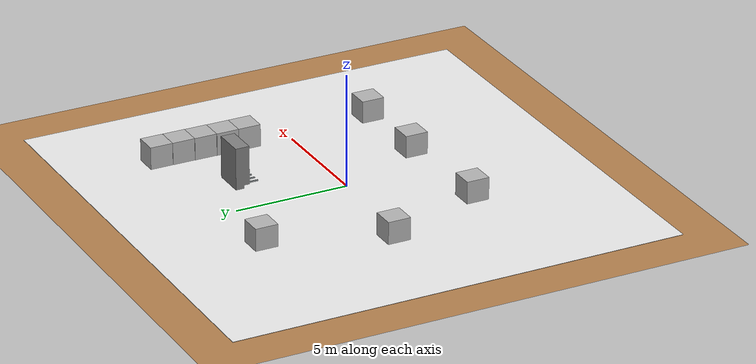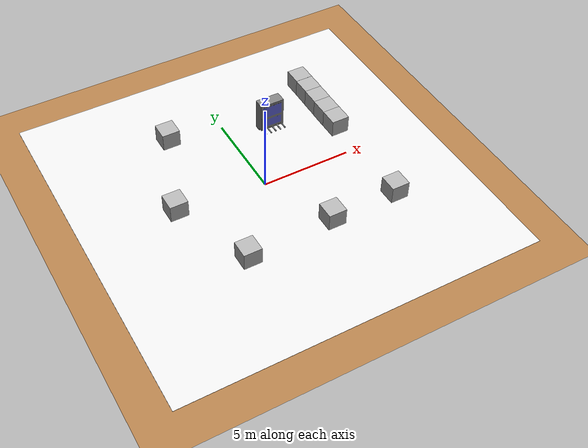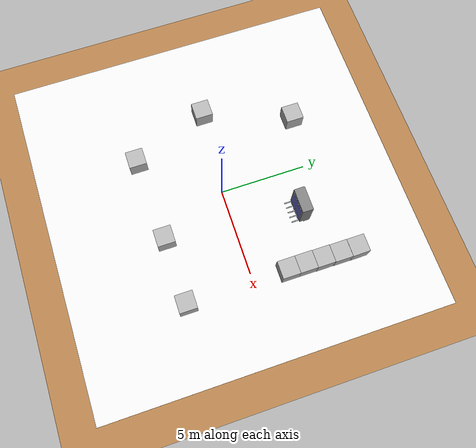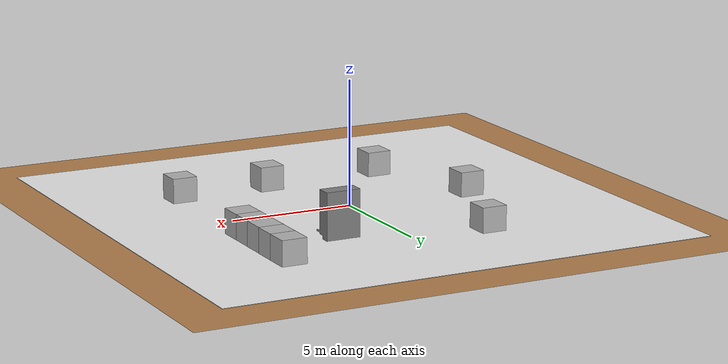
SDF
<sdf version="1.10">
 <world name="empty">
  <physics name="1ms" type="ignored">
   <max_step_size>0.001</max_step_size>
   <real_time_factor>1</real_time_factor>
   <real_time_update_rate>1000</real_time_update_rate>
  </physics>
  <plugin name="gz::sim::systems::Physics" filename="gz-sim-physics-system"/>
  <plugin name="gz::sim::systems::UserCommands" filename="gz-sim-user-commands-system"/>
  <plugin name="gz::sim::systems::SceneBroadcaster" filename="gz-sim-scene-broadcaster-system"/>
  <plugin name="gz::sim::systems::Contact" filename="gz-sim-contact-system"/>
  <gravity>0 0 -9.8000000000000007</gravity>
  <magnetic_field>5.5644999999999998e-06 2.2875799999999999e-05 -4.2388400000000002e-05</magnetic_field>
  <atmosphere type="adiabatic"/>
  <scene>
   <ambient>0.400000006 0.400000006 0.400000006 1</ambient>
   <background>0.699999988 0.699999988 0.699999988 1</background>
   <shadows>true</shadows>
  </scene>
  <model name="ground_plane">
   <static>true</static>
   <link name="link">
    <collision name="collision">
     <geometry><plane><normal>0 0 1</normal><size>100 100</size></plane></geometry>
    </collision>
    <visual name="visual">
     <geometry><plane><normal>0 0 1</normal><size>100 100</size></plane></geometry>
     <material>
      <script><uri>file://media/materials/scripts/gazebo.material</uri><name>Gazebo/Wood</name></script>
     </material>
    </visual>
    <inertial>
     <mass>1</mass>
     <inertia><ixx>1</ixx><ixy>0</ixy><ixz>0</ixz><iyy>1</iyy><iyz>0</iyz><izz>1</izz></inertia>
    </inertial>
   </link>
  </model>
  <model name="factory_layout">
   <static>true</static>
   <link name="layout_link">
    <pose>0 0 0.001 0 0 0</pose>
    <visual name="layout_visual">
     <geometry><plane><normal>0 0 1</normal><size>20 20</size></plane></geometry>
     <material>
      <ambient>1 1 1 1</ambient>
      <diffuse>1 1 1 1</diffuse>
      <specular>0 0 0 1</specular>
      <emissive>0 0 0 1</emissive>
      <script><uri>file://media/materials/scripts/gazebo.material</uri><name>Gazebo/White</name></script>
      <texture><diffuse>file:///home/meditab/car_ws_new/src/hey_agv_new/urdf/layout_cropped.jpg</diffuse></texture>
     </material>
    </visual>
    <collision name="layout_collision">
     <geometry><plane><normal>0 0 1</normal><size>20 20</size></plane></geometry>
    </collision>
    <inertial>
     <mass>0.10000000000000001</mass>
     <inertia><ixx>0.01</ixx><ixy>0</ixy><ixz>0</ixz><iyy>0.01</iyy><iyz>0</iyz><izz>0.01</izz></inertia>
    </inertial>
   </link>
  </model>
  <model name="asrs_new">
   <link name="link">
    <visual name="visual">
     <geometry>
      <mesh><uri>file:///home/meditab/car_ws_new/src/hey_agv_new/urdf/asrs_new_apriltag.gltf</uri></mesh>
     </geometry>
    </visual>
    <collision name="collision">
     <geometry>
      <mesh><uri>file:///home/meditab/car_ws_new/src/hey_agv_new/urdf/asrs_new_apriltag.gltf</uri></mesh>
     </geometry>
    </collision>
    <inertial>
     <mass>1</mass>
     <inertia><ixx>1</ixx><ixy>0</ixy><ixz>0</ixz><iyy>1</iyy><iyz>0</iyz><izz>1</izz></inertia>
    </inertial>
   </link>
   <pose>2.404789924621582 3.8794399725918596 0.12896499231933753 1.3941895961122079e-08 -3.3141494098488552e-18 3.2909053232703231e-19</pose>
   <static>true</static>
  </model>
  <model name="box">
   <pose>5.5302627943680154 5.9681636854948756 0.49999999990199806 6.2287739151293738e-22 9.3279666454713669e-22 -3.6315533669320137e-22</pose>
   <link name="box_link">
    <inertial>
     <inertia><ixx>0.16666</ixx><ixy>0</ixy><ixz>0</ixz><iyy>0.16666</iyy><iyz>0</iyz><izz>0.16666</izz></inertia>
     <mass>1</mass>
    </inertial>
    <collision name="box_collision"><geometry><box><size>1 1 1</size></box></geometry></collision>
    <visual name="box_visual">
     <geometry><box><size>1 1 1</size></box></geometry>
     <material>
      <ambient>0.300000012 0.300000012 0.300000012 1</ambient>
      <diffuse>0.699999988 0.699999988 0.699999988 1</diffuse>
      <specular>1 1 1 1</specular>
     </material>
    </visual>
   </link>
   <static>false</static>
  </model>
  <model name="box_0">
   <pose>5.5241099845846513 4.9665277414877114 0.49999999019962649 -7.8599832340965207e-09 2.2705552104490281e-13 -1.087468040024227e-09</pose>
   <link name="box_link">
    <inertial>
     <inertia><ixx>0.16666</ixx><ixy>0</ixy><ixz>0</ixz><iyy>0.16666</iyy><iyz>0</iyz><izz>0.16666</izz></inertia>
     <mass>1</mass>
    </inertial>
    <collision name="box_collision"><geometry><box><size>1 1 1</size></box></geometry></collision>
    <visual name="box_visual">
     <geometry><box><size>1 1 1</size></box></geometry>
     <material>
      <ambient>0.300000012 0.300000012 0.300000012 1</ambient>
      <diffuse>0.699999988 0.699999988 0.699999988 1</diffuse>
      <specular>1 1 1 1</specular>
     </material>
    </visual>
   </link>
   <static>false</static>
  </model>
  <model name="box_0_1">
   <pose>5.5111051877131407 3.9665285616313901 0.49999999990533067 5.4963966105279224e-11 -2.5272262332848115e-13 -7.0649464749928469e-13</pose>
   <link name="box_link">
    <inertial>
     <inertia><ixx>0.16666</ixx><ixy>0</ixy><ixz>0</ixz><iyy>0.16666</iyy><iyz>0</iyz><izz>0.16666</izz></inertia>
     <mass>1</mass>
    </inertial>
    <collision name="box_collision"><geometry><box><size>1 1 1</size></box></geometry></collision>
    <visual name="box_visual">
     <geometry><box><size>1 1 1</size></box></geometry>
     <material>
      <ambient>0.300000012 0.300000012 0.300000012 1</ambient>
      <diffuse>0.699999988 0.699999988 0.699999988 1</diffuse>
      <specular>1 1 1 1</specular>
     </material>
    </visual>
   </link>
   <static>false</static>
  </model>
  <model name="box_0_2">
   <pose>5.4965631846929037 2.9665292936967664 0.49999997937745216 2.9936423808836483e-08 -6.3098519221897885e-12 -2.3452922220623973e-09</pose>
   <link name="box_link">
    <inertial>
     <inertia><ixx>0.16666</ixx><ixy>0</ixy><ixz>0</ixz><iyy>0.16666</iyy><iyz>0</iyz><izz>0.16666</izz></inertia>
     <mass>1</mass>
    </inertial>
    <collision name="box_collision"><geometry><box><size>1 1 1</size></box></geometry></collision>
    <visual name="box_visual">
     <geometry><box><size>1 1 1</size></box></geometry>
     <material>
      <ambient>0.300000012 0.300000012 0.300000012 1</ambient>
      <diffuse>0.699999988 0.699999988 0.699999988 1</diffuse>
      <specular>1 1 1 1</specular>
     </material>
    </visual>
   </link>
   <static>false</static>
  </model>
  <model name="box_0_3">
   <pose>5.4969215385194596 1.9665293906660097 0.49999999030888653 9.3051729080101508e-09 -4.0386613469774874e-11 -2.9152124904652751e-09</pose>
   <link name="box_link">
    <inertial>
     <inertia><ixx>0.16666</ixx><ixy>0</ixy><ixz>0</ixz><iyy>0.16666</iyy><iyz>0</iyz><izz>0.16666</izz></inertia>
     <mass>1</mass>
    </inertial>
    <collision name="box_collision"><geometry><box><size>1 1 1</size></box></geometry></collision>
    <visual name="box_visual">
     <geometry><box><size>1 1 1</size></box></geometry>
     <material>
      <ambient>0.300000012 0.300000012 0.300000012 1</ambient>
      <diffuse>0.699999988 0.699999988 0.699999988 1</diffuse>
      <specular>1 1 1 1</specular>
     </material>
    </visual>
   </link>
   <static>false</static>
  </model>
  <model name="box_0_4">
   <pose>5.5062240124478112 -3.8139271795269729 0.49999933294646554 1.3165947592471557e-06 2.2705600183707841e-13 -1.0874700029836888e-09</pose>
   <link name="box_link">
    <inertial>
     <inertia><ixx>0.16666</ixx><ixy>0</ixy><ixz>0</ixz><iyy>0.16666</iyy><iyz>0</iyz><izz>0.16666</izz></inertia>
     <mass>1</mass>
    </inertial>
    <collision name="box_collision"><geometry><box><size>1 1 1</size></box></geometry></collision>
    <visual name="box_visual">
     <geometry><box><size>1 1 1</size></box></geometry>
     <material>
      <ambient>0.300000012 0.300000012 0.300000012 1</ambient>
      <diffuse>0.699999988 0.699999988 0.699999988 1</diffuse>
      <specular>1 1 1 1</specular>
     </material>
    </visual>
   </link>
   <static>false</static>
  </model>
  <model name="box_0_5">
   <pose>1.7134919237365578 -3.8749190824982667 0.49999933294646554 1.3165947592471038e-06 2.2705602812194303e-13 -1.0874700029791294e-09</pose>
   <link name="box_link">
    <inertial>
     <inertia><ixx>0.16666</ixx><ixy>0</ixy><ixz>0</ixz><iyy>0.16666</iyy><iyz>0</iyz><izz>0.16666</izz></inertia>
     <mass>1</mass>
    </inertial>
    <collision name="box_collision"><geometry><box><size>1 1 1</size></box></geometry></collision>
    <visual name="box_visual">
     <geometry><box><size>1 1 1</size></box></geometry>
     <material>
      <ambient>0.300000012 0.300000012 0.300000012 1</ambient>
      <diffuse>0.699999988 0.699999988 0.699999988 1</diffuse>
      <specular>1 1 1 1</specular>
     </material>
    </visual>
   </link>
   <static>false</static>
  </model>
  <model name="box_0_6">
   <pose>-3.1860408979388137 -4.0924093224211813 0.49999933294646554 1.3165947592471479e-06 2.2705613077193389e-13 -1.0874700029855293e-09</pose>
   <link name="box_link">
    <inertial>
     <inertia><ixx>0.16666</ixx><ixy>0</ixy><ixz>0</ixz><iyy>0.16666</iyy><iyz>0</iyz><izz>0.16666</izz></inertia>
     <mass>1</mass>
    </inertial>
    <collision name="box_collision"><geometry><box><size>1 1 1</size></box></geometry></collision>
    <visual name="box_visual">
     <geometry><box><size>1 1 1</size></box></geometry>
     <material>
      <ambient>0.300000012 0.300000012 0.300000012 1</ambient>
      <diffuse>0.699999988 0.699999988 0.699999988 1</diffuse>
      <specular>1 1 1 1</specular>
     </material>
    </visual>
   </link>
   <static>false</static>
  </model>
  <model name="box_0_7">
   <pose>-3.077974018999714 5.3841034883791767 0.49999933294646554 1.3165947592470477e-06 2.2705597444938387e-13 -1.0874700029851403e-09</pose>
   <link name="box_link">
    <inertial>
     <inertia><ixx>0.16666</ixx><ixy>0</ixy><ixz>0</ixz><iyy>0.16666</iyy><iyz>0</iyz><izz>0.16666</izz></inertia>
     <mass>1</mass>
    </inertial>
    <collision name="box_collision"><geometry><box><size>1 1 1</size></box></geometry></collision>
    <visual name="box_visual">
     <geometry><box><size>1 1 1</size></box></geometry>
     <material>
      <ambient>0.300000012 0.300000012 0.300000012 1</ambient>
      <diffuse>0.699999988 0.699999988 0.699999988 1</diffuse>
      <specular>1 1 1 1</specular>
     </material>
    </visual>
   </link>
   <static>false</static>
  </model>
  <model name="box_0_8">
   <pose>-4.94757655341005 0.42315788066466703 0.49999933294646554 1.3165947592471826e-06 2.2705605199353656e-13 -1.08747000297392e-09</pose>
   <link name="box_link">
    <inertial>
     <inertia><ixx>0.16666</ixx><ixy>0</ixy><ixz>0</ixz><iyy>0.16666</iyy><iyz>0</iyz><izz>0.16666</izz></inertia>
     <mass>1</mass>
    </inertial>
    <collision name="box_collision"><geometry><box><size>1 1 1</size></box></geometry></collision>
    <visual name="box_visual">
     <geometry><box><size>1 1 1</size></box></geometry>
     <material>
      <ambient>0.300000012 0.300000012 0.300000012 1</ambient>
      <diffuse>0.699999988 0.699999988 0.699999988 1</diffuse>
      <specular>1 1 1 1</specular>
     </material>
    </visual>
   </link>
   <static>false</static>
  </model>
  <light name="sun" type="directional">
   <pose>0 0 10 0 0 0</pose>
   <intensity>1</intensity>
   <direction>-0.5 0.10000000000000001 -0.90000000000000002</direction>
   <diffuse>0.800000012 0.800000012 0.800000012 1</diffuse>
   <specular>0.200000003 0.200000003 0.200000003 1</specular>
   <attenuation>
    <range>1000</range>
    <linear>0.01</linear>
    <constant>0.90000000000000002</constant>
    <quadratic>0.001</quadratic>
   </attenuation>
   <spot><inner_angle>0</inner_angle><outer_angle>0</outer_angle><falloff>0</falloff></spot>
  </light>
 </world>
</sdf>
